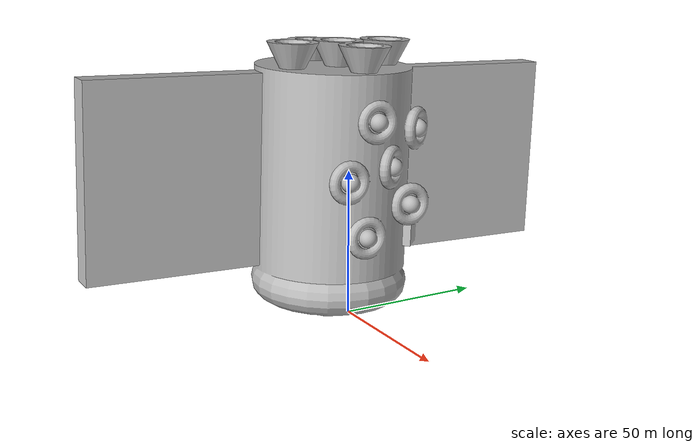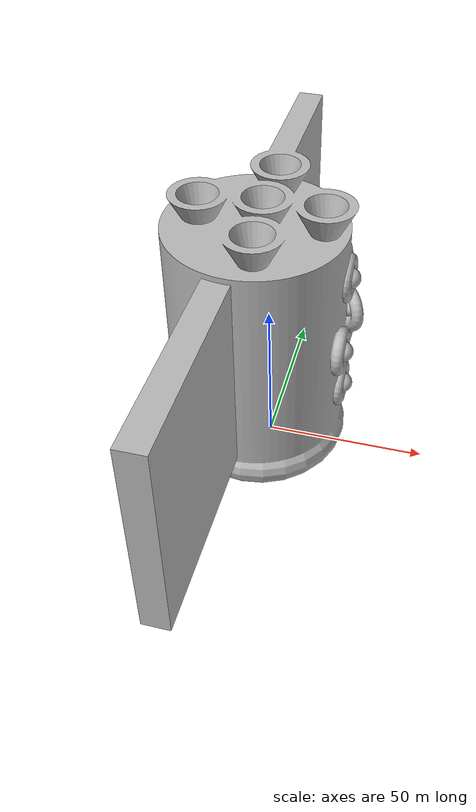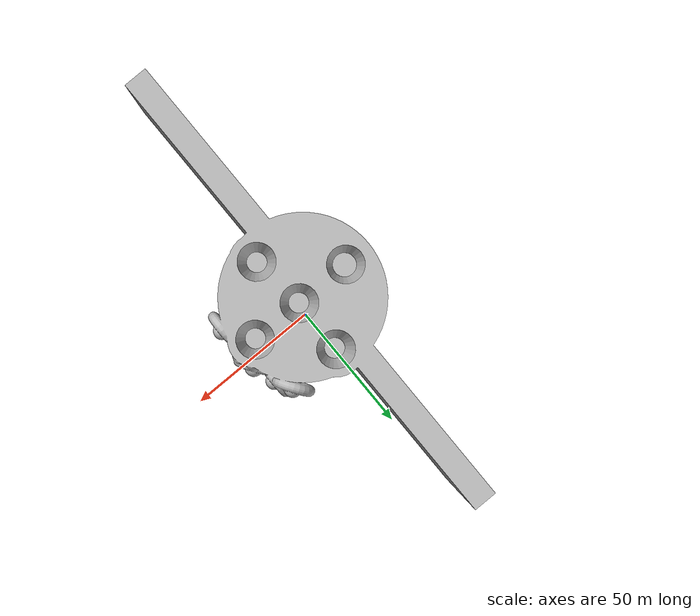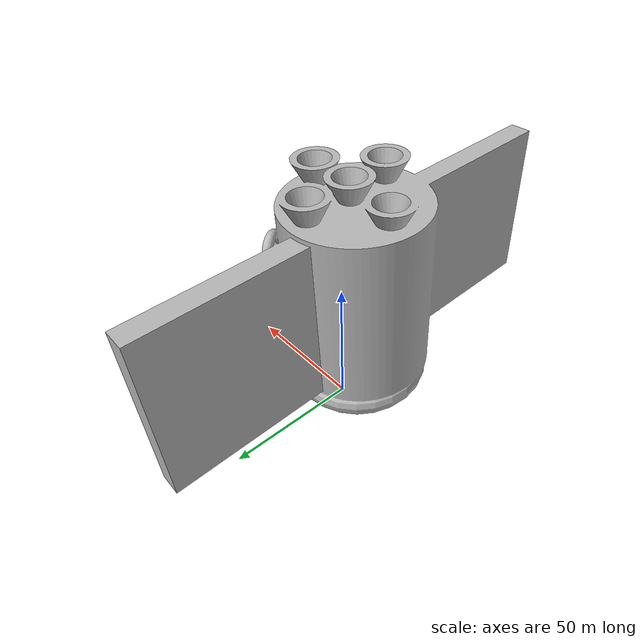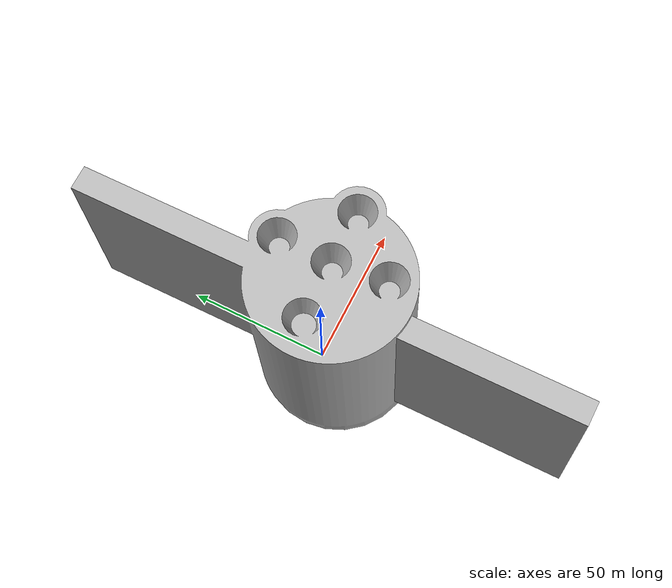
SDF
<?xml version="1.0"?>
<sdf version="1.4">
  <world name="default">
    <model name="satellite">
      <pose>0 0 0  0 0 0</pose>
      <static>true</static>
      <link name="body">
        <visual name="visual">
          <geometry>
            <mesh><uri>file://ros-slam/meshes/satellite.dae</uri></mesh>
          </geometry>
        </visual>
      </link>
    </model>
  </world>
</sdf>
